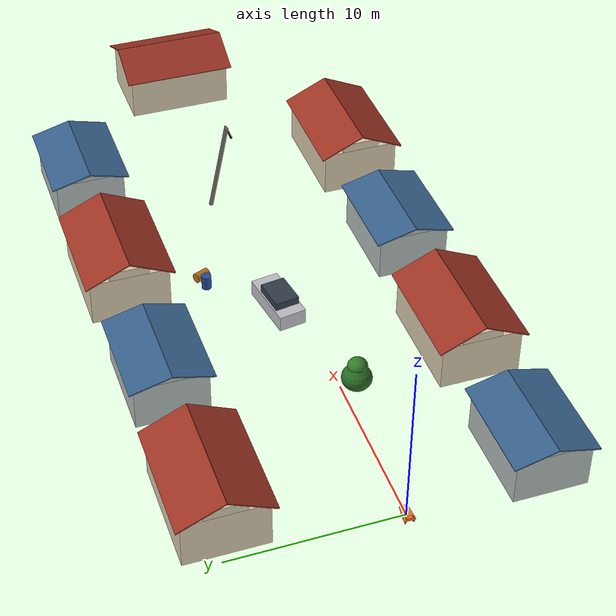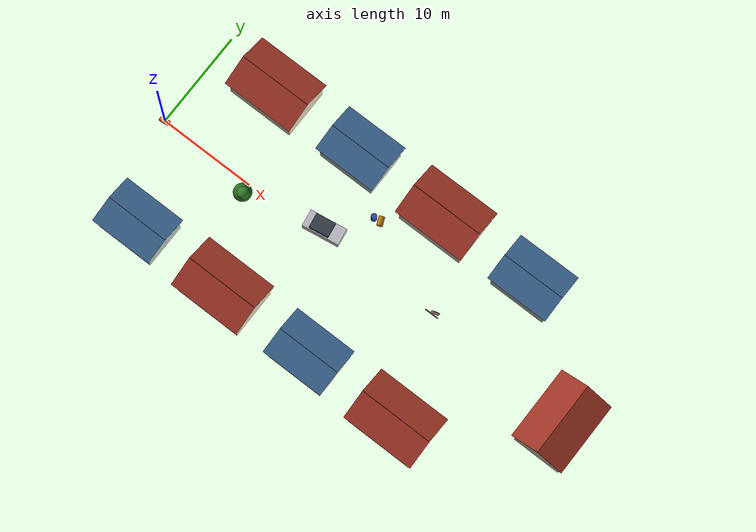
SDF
<sdf version="1.9">
 <world name="vedc_flood">
  <physics name="2ms" type="ignore">
   <max_step_size>0.002</max_step_size>
   <real_time_factor>1.0</real_time_factor>
  </physics>
  <plugin filename="gz-sim-physics-system" name="gz::sim::systems::Physics"/>
  <plugin filename="gz-sim-sensors-system" name="gz::sim::systems::Sensors">
   <render_engine>ogre2</render_engine>
  </plugin>
  <plugin filename="gz-sim-scene-broadcaster-system" name="gz::sim::systems::SceneBroadcaster"/>
  <plugin filename="gz-sim-user-commands-system" name="gz::sim::systems::UserCommands"/>
  <plugin filename="gz-sim-imu-system" name="gz::sim::systems::Imu"/>
  <scene><ambient>1.0 1.0 1.0</ambient><background>0.62 0.66 0.70</background></scene>
  <light type="directional" name="sun">
   <pose>0 0 10 0 0 0</pose>
   <diffuse>0.9 0.9 0.9 1</diffuse>
   <specular>0.6 0.6 0.6 1</specular>
   <direction>-0.5 0.1 -0.9</direction>
  </light>
  <include><name>vedc_buoy</name><uri>model://vedc_buoy</uri></include>
  <include><name>house_north_1</name><pose>6 9 0 0 0 0</pose><uri>model://flooded_house</uri></include>
  <include><name>house_north_2</name><pose>16 9 0 0 0 0</pose><uri>model://flooded_house_tin</uri></include>
  <include><name>house_north_3</name><pose>26 9 0 0 0 0</pose><uri>model://flooded_house</uri></include>
  <include><name>house_north_4</name><pose>36 9 0 0 0 0</pose><uri>model://flooded_house_tin</uri></include>
  <include><name>house_south_1</name><pose>4 -9 0 0 0 0</pose><uri>model://flooded_house_tin</uri></include>
  <include><name>house_south_2</name><pose>14 -9 0 0 0 0</pose><uri>model://flooded_house</uri></include>
  <include><name>house_south_3</name><pose>24 -9 0 0 0 0</pose><uri>model://flooded_house_tin</uri></include>
  <include><name>house_south_4</name><pose>34 -9 0 0 0 0</pose><uri>model://flooded_house</uri></include>
  <include><name>house_end</name><pose>46.0 0 0 0 0 1.5708</pose><uri>model://flooded_house</uri></include>
  <model name="tree_top">
   <static>true</static>
   <pose>10 -1.0 0 0 0 0</pose>
   <link name="link">
    <visual name="crown">
     <pose>0 0 0.45 0 0 0</pose>
     <geometry><ellipsoid><radii>0.9 0.9 0.75</radii></ellipsoid></geometry>
     <material>
      <ambient>0.16 0.42 0.14 1</ambient>
      <diffuse>0.16 0.42 0.14 1</diffuse>
      <specular>0.1 0.1 0.1 1</specular>
     </material>
    </visual>
    <visual name="crown_top">
     <pose>0.2 -0.1 1.1 0 0 0</pose>
     <geometry><ellipsoid><radii>0.6 0.6 0.5</radii></ellipsoid></geometry>
     <material>
      <ambient>0.2 0.5 0.16 1</ambient>
      <diffuse>0.2 0.5 0.16 1</diffuse>
      <specular>0.1 0.1 0.1 1</specular>
     </material>
    </visual>
    <collision name="crown">
     <geometry><cylinder><radius>0.9</radius><length>2.0</length></cylinder></geometry>
    </collision>
   </link>
  </model>
  <model name="car">
   <static>true</static>
   <pose>18 1.0 0 0 0 0.15</pose>
   <link name="link">
    <visual name="body">
     <pose>0 0 0.05 0 0 0</pose>
     <geometry><box><size>3.8 1.7 1.0</size></box></geometry>
     <material>
      <ambient>0.75 0.75 0.78 1</ambient>
      <diffuse>0.75 0.75 0.78 1</diffuse>
      <specular>0.1 0.1 0.1 1</specular>
     </material>
    </visual>
    <visual name="cabin">
     <pose>-0.2 0 0.80 0 0 0</pose>
     <geometry><box><size>2.0 1.5 0.5</size></box></geometry>
     <material>
      <ambient>0.2 0.24 0.28 1</ambient>
      <diffuse>0.2 0.24 0.28 1</diffuse>
      <specular>0.1 0.1 0.1 1</specular>
     </material>
    </visual>
    <collision name="body">
     <pose>0 0 0.05 0 0 0</pose>
     <geometry><box><size>3.8 1.7 1.0</size></box></geometry>
    </collision>
   </link>
  </model>
  <model name="pole">
   <static>true</static>
   <pose>31 0.8 0 0 0 0</pose>
   <link name="link">
    <visual name="pole">
     <pose>0 0 1.0 0.20 0 0</pose>
     <geometry><cylinder><radius>0.14</radius><length>6.0</length></cylinder></geometry>
     <material>
      <ambient>0.45 0.43 0.4 1</ambient>
      <diffuse>0.45 0.43 0.4 1</diffuse>
      <specular>0.1 0.1 0.1 1</specular>
     </material>
    </visual>
    <visual name="crossarm">
     <pose>0 -0.72 3.6 0.20 0 0</pose>
     <geometry><box><size>1.4 0.1 0.1</size></box></geometry>
     <material>
      <ambient>0.3 0.22 0.15 1</ambient>
      <diffuse>0.3 0.22 0.15 1</diffuse>
      <specular>0.1 0.1 0.1 1</specular>
     </material>
    </visual>
    <collision name="pole">
     <geometry><cylinder><radius>0.2</radius><length>2.0</length></cylinder></geometry>
    </collision>
   </link>
  </model>
  <model name="drums">
   <static>true</static>
   <pose>21 4.6 0 0 0 0</pose>
   <link name="link">
    <visual name="drum_1">
     <pose>0 0 0.2 0 0 0</pose>
     <geometry><cylinder><radius>0.3</radius><length>0.9</length></cylinder></geometry>
     <material>
      <ambient>0.15 0.3 0.6 1</ambient>
      <diffuse>0.15 0.3 0.6 1</diffuse>
      <specular>0.1 0.1 0.1 1</specular>
     </material>
    </visual>
    <visual name="drum_2">
     <pose>0.7 0.1 0.15 1.5708 0 0.4</pose>
     <geometry><cylinder><radius>0.3</radius><length>0.9</length></cylinder></geometry>
     <material>
      <ambient>0.7 0.45 0.1 1</ambient>
      <diffuse>0.7 0.45 0.1 1</diffuse>
      <specular>0.1 0.1 0.1 1</specular>
     </material>
    </visual>
    <collision name="drums">
     <pose>0.35 0 0.2 0 0 0</pose>
     <geometry><box><size>1.4 0.8 0.9</size></box></geometry>
    </collision>
   </link>
  </model>
 </world>
</sdf>

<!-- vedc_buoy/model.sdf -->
<sdf version="1.9">
  <model name="vedc_buoy">

    <!-- ===================== hull ===================== -->
    <link name="base_link">
      <inertial>
        <pose>0 0 0.02 0 0 0</pose>
        <mass>15.0</mass>
        <!-- solid box 1.10 x 0.60 x 0.25 m -->
        <inertia>
          <ixx>0.528</ixx>
          <ixy>0</ixy>
          <ixz>0</ixz>
          <iyy>1.591</iyy>
          <iyz>0</iyz>
          <izz>1.963</izz>
        </inertia>
      </inertial>

      <!-- Buoyancy and drag come from these collision shapes, not from the mesh: two boxes with
           the footprint of the CAD hulls (0.132 m wide, 0.235 m off the centreline). -->
      <collision name="hull_port_collision">
        <pose>0 0.23 0.05 0 0 0</pose>
        <geometry><box><size>1.10 0.14 0.20</size></box></geometry>
      </collision>
      <collision name="hull_stbd_collision">
        <pose>0 -0.23 0.05 0 0 0</pose>
        <geometry><box><size>1.10 0.14 0.20</size></box></geometry>
      </collision>

      <visual name="cad_visual">
        <geometry><mesh><uri>model://vedc_buoy/meshes/hull.stl</uri></mesh></geometry>
        <material>
          <ambient>0.95 0.45 0.10 1</ambient>
          <diffuse>0.95 0.45 0.10 1</diffuse>
          <specular>0.2 0.2 0.2 1</specular>
        </material>
      </visual>
      <!-- The front motor hangs 0.09 m lower than in the CAD: this strut fills the gap up to the tunnel roof. -->
      <visual name="front_strut_visual">
        <pose>0.21 0 0.085 0 0 0</pose>
        <geometry><box><size>0.075 0.03 0.09</size></box></geometry>
        <material><ambient>0.12 0.12 0.12 1</ambient><diffuse>0.15 0.15 0.15 1</diffuse><specular>0.2 0.2 0.2 1</specular></material>
      </visual>
      <!-- Flight controller IMU, in the electronics box. On the hull link itself:
           a light IMU link on a fixed joint picked up solver jitter. -->
      <sensor name="imu_sensor" type="imu">
        <pose degrees="true">-0.10 0 0.20 180 0 0</pose>
        <always_on>1</always_on>
        <update_rate>1000.0</update_rate>
      </sensor>
    </link>

    <!-- ===================== pods ===================== -->
    <link name="pod_rear_left_link">
      <pose>-0.40 0.234 -0.115 0 0 0</pose>
      <inertial>
        <mass>0.1</mass>
        <inertia><ixx>1e-4</ixx><ixy>0</ixy><ixz>0</ixz><iyy>1e-4</iyy><iyz>0</iyz><izz>1e-4</izz></inertia>
      </inertial>
      <visual name="cad_visual">
        <geometry><mesh><uri>model://vedc_buoy/meshes/pod_rear_left.stl</uri></mesh></geometry>
        <material><ambient>0.12 0.12 0.12 1</ambient><diffuse>0.15 0.15 0.15 1</diffuse><specular>0.2 0.2 0.2 1</specular></material>
      </visual>
    </link>
    <joint name="pod_rear_left_joint" type="revolute">
      <parent>base_link</parent>
      <child>pod_rear_left_link</child>
      <axis>
        <xyz>0 0 1</xyz>
        <limit><lower>-0.8</lower><upper>0.8</upper><effort>1e6</effort></limit>
        <dynamics><damping>0.05</damping></dynamics>
      </axis>
    </joint>
    <link name="prop_rear_left_link">
      <pose>-0.43 0.234 -0.115 0 0 0</pose>
      <inertial>
        <mass>0.05</mass>
        <!-- far above a real prop, as in the BlueBoat model: a light spinning link destabilises the solver -->
        <inertia><ixx>0.1</ixx><ixy>0</ixy><ixz>0</ixz><iyy>0.1</iyy><iyz>0</iyz><izz>0.1</izz></inertia>
      </inertial>
    </link>
    <joint name="prop_rear_left_joint" type="revolute">
      <parent>pod_rear_left_link</parent>
      <child>prop_rear_left_link</child>
      <axis>
        <xyz>1 0 0</xyz>
        <limit><lower>-1e16</lower><upper>1e16</upper></limit>
        <dynamics><damping>0.02</damping></dynamics>
      </axis>
    </joint>

    <link name="pod_rear_right_link">
      <pose>-0.40 -0.234 -0.115 0 0 0</pose>
      <inertial>
        <mass>0.1</mass>
        <inertia><ixx>1e-4</ixx><ixy>0</ixy><ixz>0</ixz><iyy>1e-4</iyy><iyz>0</iyz><izz>1e-4</izz></inertia>
      </inertial>
      <visual name="cad_visual">
        <geometry><mesh><uri>model://vedc_buoy/meshes/pod_rear_right.stl</uri></mesh></geometry>
        <material><ambient>0.12 0.12 0.12 1</ambient><diffuse>0.15 0.15 0.15 1</diffuse><specular>0.2 0.2 0.2 1</specular></material>
      </visual>
    </link>
    <joint name="pod_rear_right_joint" type="revolute">
      <parent>base_link</parent>
      <child>pod_rear_right_link</child>
      <axis>
        <xyz>0 0 1</xyz>
        <limit><lower>-0.8</lower><upper>0.8</upper><effort>1e6</effort></limit>
        <dynamics><damping>0.05</damping></dynamics>
      </axis>
    </joint>
    <link name="prop_rear_right_link">
      <pose>-0.43 -0.234 -0.115 0 0 0</pose>
      <inertial>
        <mass>0.05</mass>
        <!-- far above a real prop, as in the BlueBoat model: a light spinning link destabilises the solver -->
        <inertia><ixx>0.1</ixx><ixy>0</ixy><ixz>0</ixz><iyy>0.1</iyy><iyz>0</iyz><izz>0.1</izz></inertia>
      </inertial>
    </link>
    <joint name="prop_rear_right_joint" type="revolute">
      <parent>pod_rear_right_link</parent>
      <child>prop_rear_right_link</child>
      <axis>
        <xyz>1 0 0</xyz>
        <limit><lower>-1e16</lower><upper>1e16</upper></limit>
        <dynamics><damping>0.02</damping></dynamics>
      </axis>
    </joint>

    <link name="pod_front_link">
      <pose>0.19 0 -0.11 0 0 0</pose>
      <inertial>
        <mass>0.1</mass>
        <inertia><ixx>1e-4</ixx><ixy>0</ixy><ixz>0</ixz><iyy>1e-4</iyy><iyz>0</iyz><izz>1e-4</izz></inertia>
      </inertial>
      <visual name="cad_visual">
        <geometry><mesh><uri>model://vedc_buoy/meshes/pod_front.stl</uri></mesh></geometry>
        <material><ambient>0.12 0.12 0.12 1</ambient><diffuse>0.15 0.15 0.15 1</diffuse><specular>0.2 0.2 0.2 1</specular></material>
      </visual>
    </link>
    <joint name="pod_front_joint" type="revolute">
      <parent>base_link</parent>
      <child>pod_front_link</child>
      <axis>
        <xyz>0 0 1</xyz>
        <limit><lower>-0.8</lower><upper>0.8</upper><effort>1e6</effort></limit>
        <dynamics><damping>0.05</damping></dynamics>
      </axis>
    </joint>
    <link name="prop_front_link">
      <pose>0.16 0 -0.11 0 0 0</pose>
      <inertial>
        <mass>0.05</mass>
        <!-- far above a real prop, as in the BlueBoat model: a light spinning link destabilises the solver -->
        <inertia><ixx>0.1</ixx><ixy>0</ixy><ixz>0</ixz><iyy>0.1</iyy><iyz>0</iyz><izz>0.1</izz></inertia>
      </inertial>
    </link>
    <joint name="prop_front_joint" type="revolute">
      <parent>pod_front_link</parent>
      <child>prop_front_link</child>
      <axis>
        <xyz>1 0 0</xyz>
        <limit><lower>-1e16</lower><upper>1e16</upper></limit>
        <dynamics><damping>0.02</damping></dynamics>
      </axis>
    </joint>

    <!-- ===================== sensors ===================== -->
    <link name="sensor_mast_link">
      <pose>0.30 0 0.32 0 0 0</pose>
      <inertial>
        <mass>0.2</mass>
        <inertia><ixx>1e-4</ixx><ixy>0</ixy><ixz>0</ixz><iyy>1e-4</iyy><iyz>0</iyz><izz>1e-4</izz></inertia>
      </inertial>
      <visual name="mast_visual">
        <pose>0 0 -0.02 0 0 0</pose>
        <geometry><cylinder><radius>0.012</radius><length>0.08</length></cylinder></geometry>
        <material><ambient>0.12 0.12 0.12 1</ambient><diffuse>0.15 0.15 0.15 1</diffuse><specular>0.2 0.2 0.2 1</specular></material>
      </visual>
      <!-- The LiDAR unit, about the size of the LDS-008: its top stays below the scan plane. -->
      <visual name="lidar_visual">
        <pose>0 0 0.03 0 0 0</pose>
        <geometry><cylinder><radius>0.035</radius><length>0.03</length></cylinder></geometry>
        <material><ambient>0.12 0.12 0.12 1</ambient><diffuse>0.15 0.15 0.15 1</diffuse><specular>0.2 0.2 0.2 1</specular></material>
      </visual>
      <!-- LDS-008 robot-vacuum lidar: 360 points per turn, about 5 turns per second
           (figures of its sibling LDS-006). The 8 m range is not confirmed for this unit. -->
      <sensor name="lidar" type="gpu_lidar">
        <pose>0 0 0.05 0 0 0</pose>
        <always_on>1</always_on>
        <update_rate>5</update_rate>
        <topic>vedc_buoy/lidar</topic>
        <lidar>
          <scan>
            <horizontal>
              <samples>360</samples>
              <resolution>1</resolution>
              <min_angle>-3.14159</min_angle>
              <max_angle>3.14159</max_angle>
            </horizontal>
            <vertical>
              <samples>1</samples>
              <resolution>1</resolution>
              <min_angle>0</min_angle>
              <max_angle>0</max_angle>
            </vertical>
          </scan>
          <range><min>0.15</min><max>8.0</max><resolution>0.01</resolution></range>
          <noise><type>gaussian</type><mean>0</mean><stddev>0.01</stddev></noise>
        </lidar>
      </sensor>
    </link>
    <joint name="sensor_mast_joint" type="fixed">
      <parent>base_link</parent>
      <child>sensor_mast_link</child>
    </joint>

    <!-- OV9726 camera on an SG90 pan servo, on the bow box where the CAD has it. The link shows
         the CAD's camera body and pans with the servo. -->
    <link name="camera_link">
      <pose>0.41 0 0.295 0 0 0</pose>
      <inertial>
        <mass>0.03</mass>
        <inertia><ixx>1e-4</ixx><ixy>0</ixy><ixz>0</ixz><iyy>1e-4</iyy><iyz>0</iyz><izz>1e-4</izz></inertia>
      </inertial>
      <visual name="cad_visual">
        <geometry><mesh><uri>model://vedc_buoy/meshes/camera.stl</uri></mesh></geometry>
        <material><ambient>0.12 0.12 0.12 1</ambient><diffuse>0.15 0.15 0.15 1</diffuse><specular>0.2 0.2 0.2 1</specular></material>
      </visual>
      <!-- OV9726 with the team's 60 deg lens. Horizontal FOV must match
           camera.horizontal_fov_deg in the Pi's settings.yaml; at 4:3 that is 46.8 deg vertical. -->
      <sensor name="camera" type="camera">
        <pose>0.02 0 0 0 0 0</pose>
        <always_on>1</always_on>
        <update_rate>15</update_rate>
        <topic>vedc_buoy/camera</topic>
        <camera>
          <horizontal_fov>1.0472</horizontal_fov>
          <image><width>640</width><height>480</height><format>R8G8B8</format></image>
          <clip><near>0.05</near><far>200</far></clip>
        </camera>
      </sensor>
    </link>
    <!-- Axis points down so a positive angle pans right, the convention of
         Rasp_Pi/modules/perception.py track_pan and of the CAM packet. -->
    <joint name="camera_pan_joint" type="revolute">
      <parent>sensor_mast_link</parent>
      <child>camera_link</child>
      <axis>
        <xyz>0 0 -1</xyz>
        <limit><lower>-1.5708</lower><upper>1.5708</upper><effort>1e6</effort></limit>
        <dynamics><damping>0.01</damping></dynamics>
      </axis>
    </joint>

    <!-- ===================== plugins ===================== -->
    <plugin name="gz::sim::systems::JointStatePublisher" filename="gz-sim-joint-state-publisher-system"/>
    <plugin name="gz::sim::systems::OdometryPublisher" filename="gz-sim-odometry-publisher-system">
      <odom_frame>odom</odom_frame>
      <robot_base_frame>base_link</robot_base_frame>
      <dimensions>3</dimensions>
    </plugin>

    <!-- Thrusters: cmd_thrust in newtons along each pod's x axis. -->
    <plugin name="gz::sim::systems::Thruster" filename="gz-sim-thruster-system">
      <namespace>vedc_buoy</namespace>
      <joint_name>prop_rear_left_joint</joint_name>
      <thrust_coefficient>0.02</thrust_coefficient>
      <fluid_density>1000</fluid_density>
      <propeller_diameter>0.06</propeller_diameter>
      <velocity_control>0</velocity_control>
      <use_angvel_cmd>0</use_angvel_cmd>
    </plugin>
    <plugin name="gz::sim::systems::Thruster" filename="gz-sim-thruster-system">
      <namespace>vedc_buoy</namespace>
      <joint_name>prop_rear_right_joint</joint_name>
      <thrust_coefficient>0.02</thrust_coefficient>
      <fluid_density>1000</fluid_density>
      <propeller_diameter>0.06</propeller_diameter>
      <velocity_control>0</velocity_control>
      <use_angvel_cmd>0</use_angvel_cmd>
    </plugin>
    <plugin name="gz::sim::systems::Thruster" filename="gz-sim-thruster-system">
      <namespace>vedc_buoy</namespace>
      <joint_name>prop_front_joint</joint_name>
      <thrust_coefficient>0.02</thrust_coefficient>
      <fluid_density>1000</fluid_density>
      <propeller_diameter>0.06</propeller_diameter>
      <velocity_control>0</velocity_control>
      <use_angvel_cmd>0</use_angvel_cmd>
    </plugin>

    <!-- Pod servos (DS51150-12V, 0.21 s per 60 deg = 5 rad/s): position commands in radians. -->
    <plugin name="gz::sim::systems::JointPositionController" filename="gz-sim-joint-position-controller-system">
      <joint_name>pod_rear_left_joint</joint_name>
      <topic>/model/vedc_buoy/joint/pod_rear_left_joint/cmd_pos</topic>
      <use_velocity_commands>true</use_velocity_commands>
      <p_gain>12</p_gain>
      <cmd_max>5</cmd_max>
      <cmd_min>-5</cmd_min>
    </plugin>
    <plugin name="gz::sim::systems::JointPositionController" filename="gz-sim-joint-position-controller-system">
      <joint_name>pod_rear_right_joint</joint_name>
      <topic>/model/vedc_buoy/joint/pod_rear_right_joint/cmd_pos</topic>
      <use_velocity_commands>true</use_velocity_commands>
      <p_gain>12</p_gain>
      <cmd_max>5</cmd_max>
      <cmd_min>-5</cmd_min>
    </plugin>
    <plugin name="gz::sim::systems::JointPositionController" filename="gz-sim-joint-position-controller-system">
      <joint_name>pod_front_joint</joint_name>
      <topic>/model/vedc_buoy/joint/pod_front_joint/cmd_pos</topic>
      <use_velocity_commands>true</use_velocity_commands>
      <p_gain>12</p_gain>
      <cmd_max>5</cmd_max>
      <cmd_min>-5</cmd_min>
    </plugin>

    <!-- Camera pan (SG90, about 0.1 s per 60 deg = 10 rad/s): angle in radians, positive right.
         On the boat the Blue Pill drives this servo for the Pi; here the Pi code publishes the topic. -->
    <plugin name="gz::sim::systems::JointPositionController" filename="gz-sim-joint-position-controller-system">
      <joint_name>camera_pan_joint</joint_name>
      <topic>/model/vedc_buoy/joint/camera_pan_joint/cmd_pos</topic>
      <use_velocity_commands>true</use_velocity_commands>
      <p_gain>20</p_gain>
      <cmd_max>10</cmd_max>
      <cmd_min>-10</cmd_min>
    </plugin>

    <plugin name="gz::sim::systems::Hydrodynamics" filename="gz-waves1-hydrodynamics-system">
      <enable>vedc_buoy::base_link</enable>
      <hydrodynamics>
        <damping_on>1</damping_on>
        <viscous_drag_on>1</viscous_drag_on>
        <pressure_drag_on>1</pressure_drag_on>
      </hydrodynamics>
    </plugin>

    <plugin name="ArduPilotPlugin" filename="ArduPilotPlugin">
      <fdm_addr>127.0.0.1</fdm_addr>
      <fdm_port_in>9002</fdm_port_in>
      <connectionTimeoutMaxCount>5</connectionTimeoutMaxCount>
      <lock_step>1</lock_step>
      <gazeboXYZToNED degrees="true">0 0 0 180 0 90</gazeboXYZToNED>
      <modelXYZToAirplaneXForwardZDown degrees="true">0 0 0 180 0 0</modelXYZToAirplaneXForwardZDown>
      <imuName>base_link::imu_sensor</imuName>

      <!-- SERVO1 ThrottleLeft: +-15 N -->
      <control channel="0">
        <jointName>prop_rear_left_joint</jointName>
        <multiplier>30</multiplier>
        <offset>-0.5</offset>
        <servo_min>1000</servo_min>
        <servo_max>2000</servo_max>
        <type>COMMAND</type>
        <cmd_topic>/model/vedc_buoy/joint/prop_rear_left_joint/cmd_thrust</cmd_topic>
      </control>
      <!-- SERVO2 GroundSteering: rear pods, +-45 deg; positive (bow right) turns them anticlockwise -->
      <control channel="1">
        <jointName>pod_rear_left_joint</jointName>
        <multiplier>1.5708</multiplier>
        <offset>-0.5</offset>
        <servo_min>1000</servo_min>
        <servo_max>2000</servo_max>
        <type>COMMAND</type>
        <cmd_topic>/model/vedc_buoy/joint/pod_rear_left_joint/cmd_pos</cmd_topic>
      </control>
      <control channel="1">
        <jointName>pod_rear_right_joint</jointName>
        <multiplier>1.5708</multiplier>
        <offset>-0.5</offset>
        <servo_min>1000</servo_min>
        <servo_max>2000</servo_max>
        <type>COMMAND</type>
        <cmd_topic>/model/vedc_buoy/joint/pod_rear_right_joint/cmd_pos</cmd_topic>
      </control>
      <!-- SERVO3 ThrottleRight: +-15 N -->
      <control channel="2">
        <jointName>prop_rear_right_joint</jointName>
        <multiplier>30</multiplier>
        <offset>-0.5</offset>
        <servo_min>1000</servo_min>
        <servo_max>2000</servo_max>
        <type>COMMAND</type>
        <cmd_topic>/model/vedc_buoy/joint/prop_rear_right_joint/cmd_thrust</cmd_topic>
      </control>
      <!-- SERVO4 Throttle: front motor, +-10 N, 1500 us stop -->
      <control channel="3">
        <jointName>prop_front_joint</jointName>
        <multiplier>20</multiplier>
        <offset>-0.5</offset>
        <servo_min>1000</servo_min>
        <servo_max>2000</servo_max>
        <type>COMMAND</type>
        <cmd_topic>/model/vedc_buoy/joint/prop_front_joint/cmd_thrust</cmd_topic>
      </control>
      <!-- SERVO5 GroundSteering reversed: front pod, opposite to the rear ones -->
      <control channel="4">
        <jointName>pod_front_joint</jointName>
        <multiplier>1.5708</multiplier>
        <offset>-0.5</offset>
        <servo_min>1000</servo_min>
        <servo_max>2000</servo_max>
        <type>COMMAND</type>
        <cmd_topic>/model/vedc_buoy/joint/pod_front_joint/cmd_pos</cmd_topic>
      </control>
    </plugin>
  </model>
</sdf>

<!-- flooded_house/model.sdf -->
<sdf version="1.9">
  <model name="flooded_house">
    <static>true</static>
    <link name="house">
      <visual name="walls">
        <pose>0 0 -1.000 0 0 0</pose>
        <geometry><box><size>7.0 5.0 3.0</size></box></geometry>
        <material><ambient>0.85 0.8 0.68 1</ambient><diffuse>0.85 0.8 0.68 1</diffuse><specular>0.1 0.1 0.1 1</specular></material>
      </visual>
      <visual name="gable">
        <pose>0 0 0.791 0 0 0</pose>
        <geometry><box><size>7.0 2.5 0.583</size></box></geometry>
        <material><ambient>0.85 0.8 0.68 1</ambient><diffuse>0.85 0.8 0.68 1</diffuse><specular>0.1 0.1 0.1 1</specular></material>
      </visual>
      <visual name="roof_north">
        <pose>0 1.400 1.013 -0.4363 0 0</pose>
        <geometry><box><size>7.6 3.089 0.08</size></box></geometry>
        <material><ambient>0.62 0.2 0.14 1</ambient><diffuse>0.62 0.2 0.14 1</diffuse><specular>0.1 0.1 0.1 1</specular></material>
      </visual>
      <visual name="roof_south">
        <pose>0 -1.400 1.013 0.4363 0 0</pose>
        <geometry><box><size>7.6 3.089 0.08</size></box></geometry>
        <material><ambient>0.62 0.2 0.14 1</ambient><diffuse>0.62 0.2 0.14 1</diffuse><specular>0.1 0.1 0.1 1</specular></material>
      </visual>
      <collision name="walls">
        <pose>0 0 -1.000 0 0 0</pose>
        <geometry><box><size>7.0 5.0 3.0</size></box></geometry>
      </collision>
    </link>
  </model>
</sdf>

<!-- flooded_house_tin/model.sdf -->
<sdf version="1.9">
  <model name="flooded_house_tin">
    <static>true</static>
    <link name="house">
      <visual name="walls">
        <pose>0 0 -1.050 0 0 0</pose>
        <geometry><box><size>6.0 4.5 2.9</size></box></geometry>
        <material><ambient>0.7 0.74 0.72 1</ambient><diffuse>0.7 0.74 0.72 1</diffuse><specular>0.1 0.1 0.1 1</specular></material>
      </visual>
      <visual name="gable">
        <pose>0 0 0.551 0 0 0</pose>
        <geometry><box><size>6.0 2.25 0.301</size></box></geometry>
        <material><ambient>0.7 0.74 0.72 1</ambient><diffuse>0.7 0.74 0.72 1</diffuse><specular>0.1 0.1 0.1 1</specular></material>
      </visual>
      <visual name="roof_north">
        <pose>0 1.275 0.661 -0.2618 0 0</pose>
        <geometry><box><size>6.6 2.640 0.08</size></box></geometry>
        <material><ambient>0.22 0.38 0.55 1</ambient><diffuse>0.22 0.38 0.55 1</diffuse><specular>0.1 0.1 0.1 1</specular></material>
      </visual>
      <visual name="roof_south">
        <pose>0 -1.275 0.661 0.2618 0 0</pose>
        <geometry><box><size>6.6 2.640 0.08</size></box></geometry>
        <material><ambient>0.22 0.38 0.55 1</ambient><diffuse>0.22 0.38 0.55 1</diffuse><specular>0.1 0.1 0.1 1</specular></material>
      </visual>
      <collision name="walls">
        <pose>0 0 -1.050 0 0 0</pose>
        <geometry><box><size>6.0 4.5 2.9</size></box></geometry>
      </collision>
    </link>
  </model>
</sdf>
